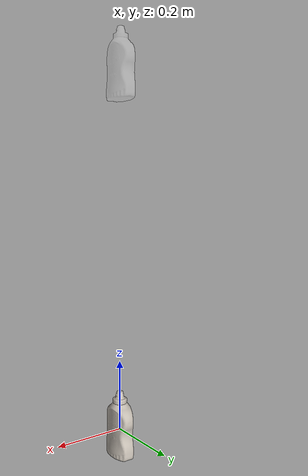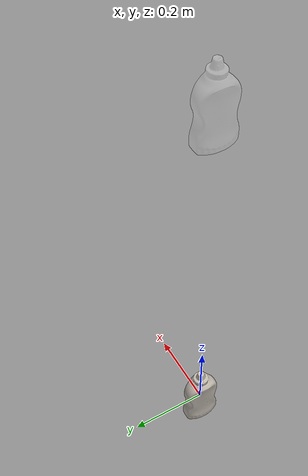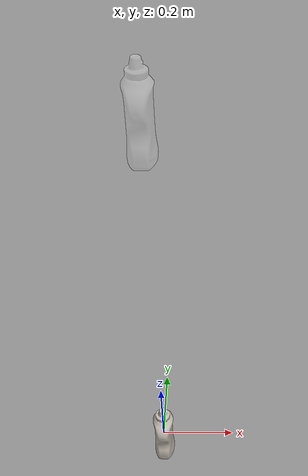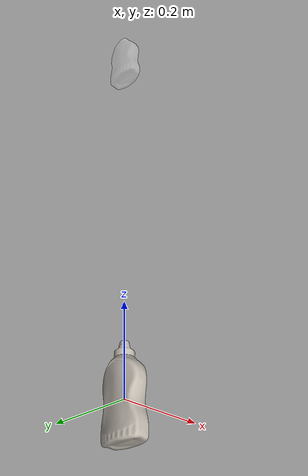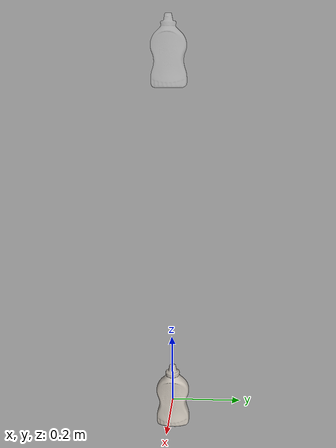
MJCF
<mujoco model="006_mustard_bottle">
  <compiler meshdir="assets" texturedir="assets"/>

  <default>
    <default class="ycb_visual">
      <geom group="2" type="mesh" contype="0" conaffinity="0" mass="0"/>
    </default>
    <default class="ycb_collision">
      <geom group="3" type="mesh" condim="6" priority="1" solref="0.01 2" solimp="0.99 0.999 0.001 0.5 1"/>
    </default>
  </default>

  <asset>
    <texture type="2d" name="texture_map" file="texture_map.png"/>
    <material name="material_0" texture="texture_map"/>
    <mesh file="006_mustard_bottle.obj"/>
    <mesh file="006_mustard_bottle_collision_0.obj"/>
    <mesh file="006_mustard_bottle_collision_1.obj"/>
    <mesh file="006_mustard_bottle_collision_2.obj"/>
  </asset>

  <worldbody>
    <body name="body">
      <inertial pos="0 0 0" mass="0.603" diaginertia="0.00165003 0.00144161 0.00042077"/>
      <joint name="joint" type='free' damping="0.005"/>
      <geom name="visual_geom" material="material_0" mesh="006_mustard_bottle" class="ycb_visual"/>
      <geom name="collision_geom_0" mesh="006_mustard_bottle_collision_0" rgba="0.3882097490163361 0.5765411576247772 0.31938714099354504 1" class="ycb_collision"/>
      <geom name="collision_geom_1" mesh="006_mustard_bottle_collision_1" rgba="0.5666407331425302 0.28205737852735036 0.22597202828533347 1" class="ycb_collision"/>
      <geom name="collision_geom_2" mesh="006_mustard_bottle_collision_2" rgba="0.6897937056056422 0.6018823898456783 0.2989826239550134 1" class="ycb_collision"/>
      <site name="barcode" group="4" rgba="1 0 0 1" pos="-0.026312 -0.000525 -0.043586" quat="0.5 0.5 -0.5 -0.5"/>
    </body>

    <body name="target_body" mocap="true" pos="0 0 1" quat="1 0 0 0">
      <geom name="target_visual_geom"
            type="mesh"
            mesh="006_mustard_bottle"
            material="material_0"
            contype="0" conaffinity="0"
            group="2"
            rgba="1 1 1 0.25"/>
    </body>
  </worldbody>
</mujoco>
